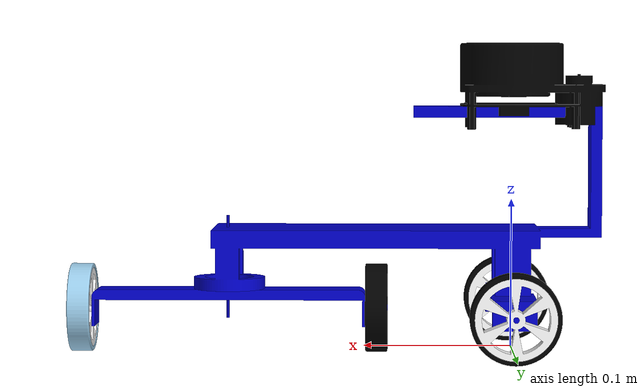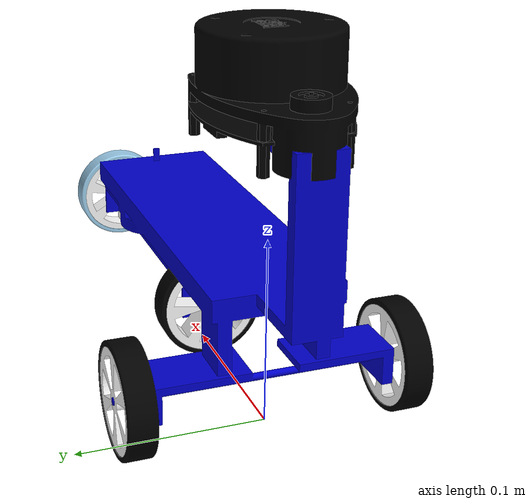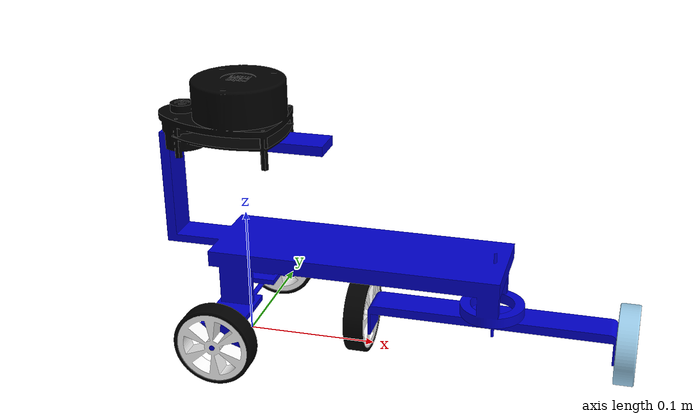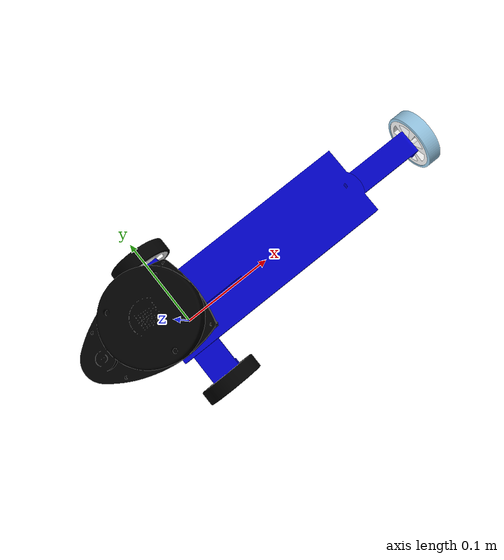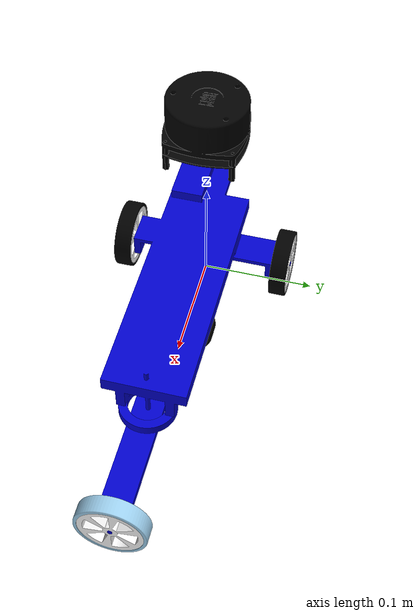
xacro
<?xml version="1.0"?>
<robot name="mobile_robot" xmlns:xacro="http://ros.org/wiki/xacro">

    <material name="blue">
	    <color rgba="0 0 0.8 1"/>
    </material>

    <material name="white">
	    <color rgba="1 1 1 1"/>
    </material>

    <material name="black">
	    <color rgba="0 0 0 1"/>
    </material>

    <material name="green">
        <color rgba="0.0 0.8 0.0 1.0"/>
    </material>

    <link name="base_link">
        <collision>
          <origin rpy="0 0 0" xyz="0 0 0"/>
          <geometry>
            <box size="0.22 0.22 0.001"/>
          </geometry>
        </collision>
    </link>

    <joint name="base_link_joint" type="fixed">
        <origin xyz="0 0 0.026" rpy="0 0 0" />
        <parent link="base_link" />
        <child link="base_plate" />
    </joint>

    <link name="base_plate">
      <visual>
        <origin xyz="0.092 0 0.055" rpy="0 0 1.5708" />
        <geometry>
          <mesh filename="package://STA_robot_explorateur_ros/stl/chassi.stl"/>
        </geometry>
        <material name="blue"/>
      </visual>
      <collision>
        <origin xyz="0.092 0 0.055" rpy="0 0 1.5708" />
        <geometry>
          <mesh filename="package://STA_robot_explorateur_ros/stl/chassi.stl"/>
        </geometry>
      </collision>
      <!---wheel-->
      <visual>
        <origin xyz="0 0.0725 0" rpy="0 -1.5708 0" />
        <geometry>
          <mesh filename="package://STA_robot_explorateur_ros/stl/wheel.stl"/>
        </geometry>
        <material name="white"/>
      </visual>
      <collision>
        <origin xyz="0 0.0725 0" rpy="0 -1.5708 0" />
        <geometry>
          <mesh filename="package://STA_robot_explorateur_ros/stl/wheel.stl"/>
        </geometry>
        <material name="white"/>
      </collision>

      <visual>
        <origin xyz="0 0.0725461 0" rpy="0 -1.5708 0" />
        <geometry>
          <mesh filename="package://STA_robot_explorateur_ros/stl/tire.stl"/>
        </geometry>
        <material name="black"/>
      </visual>
      <collision>
        <origin xyz="0 0.0725461 0" rpy="0 -1.5708 0" />
        <geometry>
          <mesh filename="package://STA_robot_explorateur_ros/stl/tire.stl"/>
        </geometry>
        <material name="black"/>
      </collision>

      <visual>
        <origin xyz="0 -0.0725 0" rpy="-3.14159 1.5708 0" />
        <geometry>
          <mesh filename="package://STA_robot_explorateur_ros/stl/wheel.stl"/>
        </geometry>
        <material name="white"/>
      </visual>
      <collision>
        <origin xyz="0 -0.0725 0" rpy="-3.14159 1.5708 0" />
        <geometry>
          <mesh filename="package://STA_robot_explorateur_ros/stl/wheel.stl"/>
        </geometry>
        <material name="white"/>
      </collision>

      <visual>
        <origin xyz="0 -0.0725461 0" rpy="-3.14159 1.5708 0" />
        <geometry>
          <mesh filename="package://STA_robot_explorateur_ros/stl/tire.stl"/>
        </geometry>
        <material name="black"/>
      </visual>
      <collision>
          <origin xyz="0 -0.0725461 0" rpy="-3.14159 1.5708 0" />
          <geometry>
          <mesh filename="package://STA_robot_explorateur_ros/stl/tire.stl"/>
          </geometry>
          <material name="black"/>
      </collision>
    </link>

    <joint name="front_steer_joint" type="revolute">
        <origin xyz="0.192 0 0.013" rpy="0 0 1.5708" />
        <parent link="base_plate" />
        <child link="steering" />
        <axis xyz="0 0 1"/>
	      <limit effort="1" velocity="20" lower="-0.523599" upper="0.523599"/>
	      <joint_properties friction="0.0"/>
    </joint>

    <link name="steering">
      <visual>
        <origin xyz="0 0 -0.007" rpy="0 0 -1.5708" />
        <geometry>
          <mesh filename="package://STA_robot_explorateur_ros/stl/steering.stl"/>
        </geometry>
        <material name="blue"/>
      </visual>
      <collision>
        <origin xyz="0 0 -0.007" rpy="0 0 -1.5708" />
        <geometry>
          <mesh filename="package://STA_robot_explorateur_ros/stl/steering.stl"/>
        </geometry>
      </collision>
      <!---wheel-->
      <visual>
        <origin xyz="0 -0.1005  -0.013" rpy="0 -0.3744 0" />
        <geometry>
          <mesh filename="package://STA_robot_explorateur_ros/stl/wheel.stl"/>
        </geometry>
        <material name="white"/>
      </visual>
      <collision>
        <origin xyz="0 -0.1005 -0.013" rpy="0 -0.3744 0" />
        <geometry>
          <mesh filename="package://STA_robot_explorateur_ros/stl/wheel.stl"/>
        </geometry>
        <material name="white"/>
      </collision>
      <visual>
        <origin xyz="0 0.100454 -0.013" rpy="0 0 0" />
        <geometry>
          <mesh filename="package://STA_robot_explorateur_ros/stl/tire.stl"/>
        </geometry>
        <material name="black"/>
      </visual>
      <collision>
        <origin xyz="0 0.100454 -0.013" rpy="0 0 0" />
        <geometry>
          <mesh filename="package://STA_robot_explorateur_ros/stl/tire.stl"/>
        </geometry>
        <material name="black"/>
      </collision>
      <visual>
        <origin xyz="0 -0.100454 -0.013" rpy="0 -0.3744 0" />
        <geometry>
        <mesh filename="package://STA_robot_explorateur_ros/stl/tire.stl"/>
        </geometry>
        <material name="black">
        <color rgba="0.615686 0.811765 0.929412 1.0"/>
        </material>
      </visual>
      <collision>
        <origin xyz="0 -0.100454 -0.013" rpy="0 -0.3744 0" />
        <geometry>
          <mesh filename="package://STA_robot_explorateur_ros/stl/tire.stl"/>
        </geometry>
        <material name="black"/>
      </collision>
        <visual>
        <origin xyz="0 0.1005 -0.013" rpy="0 0 0" />
        <geometry>
          <mesh filename="package://STA_robot_explorateur_ros/stl/wheel.stl"/>
        </geometry>
        <material name="white"/>
      </visual>
      <collision>
        <origin xyz="0 0.1005 -0.013" rpy="0 0 0" />
        <geometry>
          <mesh filename="package://STA_robot_explorateur_ros/stl/wheel.stl"/>
        </geometry>
        <material name="white"/>
      </collision>

    </link>

    <joint name="laser_joint" type="fixed">
        <origin xyz="0.0007 0 0.1375" rpy="0 0 0" />
        <parent link="base_plate" />
        <child link="laser_frame" />
        <axis xyz="0 0 1"/>
        <limit effort="1" velocity="20" />
        <joint_properties friction="0.0"/>
    </joint>

    <link name="laser_frame">
      <visual>
        <origin xyz="-0.00075 0 0.025" rpy="0 0 1.5708" />
        <geometry>
          <mesh filename="package://STA_robot_explorateur_ros/stl/lidar.stl"/>
        </geometry>
        <material name="black"/>
      </visual>
      <collision>
        <origin xyz="-0.00075 0 0.025" rpy="0 0 0" />
        <geometry>
          <mesh filename="package://STA_robot_explorateur_ros/stl/lidar.stl"/>
        </geometry>
      </collision>
    </link>

</robot>
